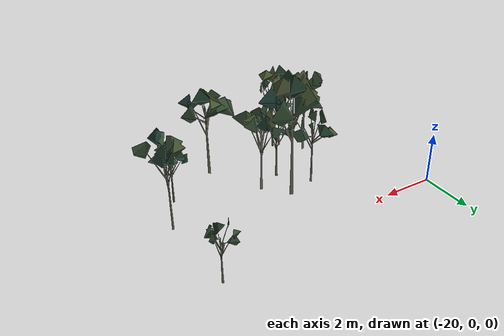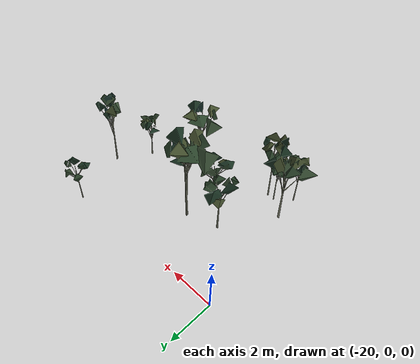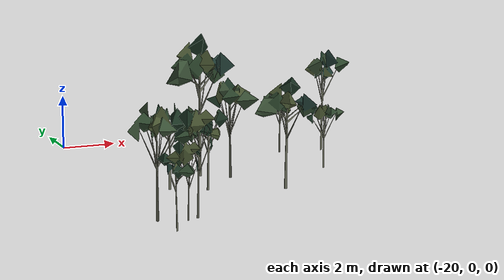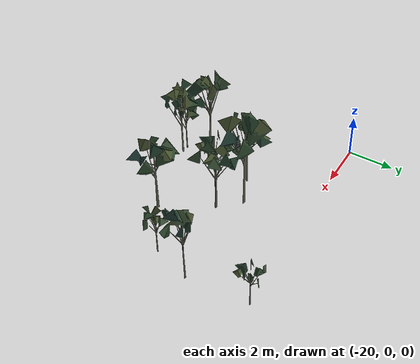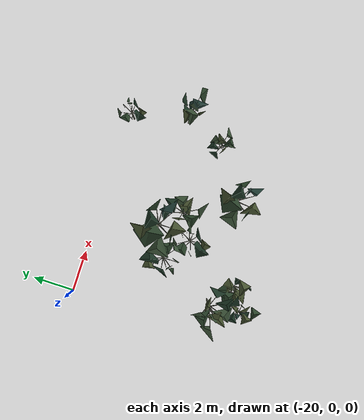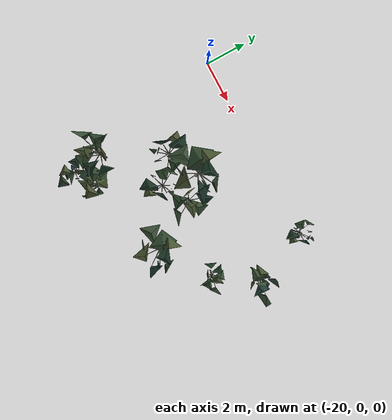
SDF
<sdf version="1.8">
 <model name="blue_mountains">
  <static>true</static>
  <link name="forest_18_19">
   <collision name="tree_33_trunk">
    <pose>-17.67387 -7.1513 -0.1148505 0 0 -0.3141277</pose>
    <geometry><cylinder><radius>0.03664446</radius><length>2.218725</length></cylinder></geometry>
   </collision>
   <collision name="plant_33_crown_0">
    <pose>-17.68781 -7.14677 -1.224213 0 0 -0.3141277</pose>
    <geometry>
     <mesh>
      <uri>model://blue_mountains/meshes/canopy_0_0.dae</uri>
      <scale>0.1465779 0.1465779 0.1636297</scale>
     </mesh>
    </geometry>
   </collision>
   <collision name="plant_33_crown_1">
    <pose>-17.68781 -7.14677 -1.224213 0 0 -0.3141277</pose>
    <geometry>
     <mesh>
      <uri>model://blue_mountains/meshes/canopy_0_1.dae</uri>
      <scale>0.1465779 0.1465779 0.1636297</scale>
     </mesh>
    </geometry>
   </collision>
   <collision name="tree_74_trunk">
    <pose>-18.5521 -6.403756 0.2904527 0 0 1.483283</pose>
    <geometry><cylinder><radius>0.06112766</radius><length>3.265831</length></cylinder></geometry>
   </collision>
   <collision name="plant_74_crown_0">
    <pose>-18.55424 -6.428114 -1.342463 0 0 1.483283</pose>
    <geometry>
     <mesh>
      <uri>model://blue_mountains/meshes/canopy_5_0.dae</uri>
      <scale>0.2445106 0.2445106 0.2454747</scale>
     </mesh>
    </geometry>
   </collision>
   <collision name="plant_74_crown_1">
    <pose>-18.55424 -6.428114 -1.342463 0 0 1.483283</pose>
    <geometry>
     <mesh>
      <uri>model://blue_mountains/meshes/canopy_5_1.dae</uri>
      <scale>0.2445106 0.2445106 0.2454747</scale>
     </mesh>
    </geometry>
   </collision>
   <collision name="tree_86_trunk">
    <pose>-14.75222 -3.83536 0.7106016 0 0 -2.903044</pose>
    <geometry><cylinder><radius>0.05477026</radius><length>2.962629</length></cylinder></geometry>
   </collision>
   <collision name="plant_86_crown_0">
    <pose>-14.73093 -3.830183 -0.7707131 0 0 -2.903044</pose>
    <geometry>
     <mesh><uri>model://blue_mountains/meshes/canopy_5_0.dae</uri><scale>0.219081 0.219081 0.2226847</scale></mesh>
    </geometry>
   </collision>
   <collision name="plant_86_crown_1">
    <pose>-14.73093 -3.830183 -0.7707131 0 0 -2.903044</pose>
    <geometry>
     <mesh><uri>model://blue_mountains/meshes/canopy_5_1.dae</uri><scale>0.219081 0.219081 0.2226847</scale></mesh>
    </geometry>
   </collision>
   <collision name="tree_96_trunk">
    <pose>-18.40975 -7.88112 -0.2095358 0 0 2.776021</pose>
    <geometry><cylinder><radius>0.04003729</radius><length>2.228242</length></cylinder></geometry>
   </collision>
   <collision name="plant_96_crown_0">
    <pose>-18.39479 -7.886845 -1.323657 0 0 2.776021</pose>
    <geometry>
     <mesh>
      <uri>model://blue_mountains/meshes/canopy_8_0.dae</uri>
      <scale>0.1601492 0.1601492 0.1658012</scale>
     </mesh>
    </geometry>
   </collision>
   <collision name="plant_96_crown_1">
    <pose>-18.39479 -7.886845 -1.323657 0 0 2.776021</pose>
    <geometry>
     <mesh>
      <uri>model://blue_mountains/meshes/canopy_8_1.dae</uri>
      <scale>0.1601492 0.1601492 0.1658012</scale>
     </mesh>
    </geometry>
   </collision>
   <collision name="tree_142_trunk">
    <pose>-11.25445 -4.555299 0.44985 0 0 -2.02446</pose>
    <geometry><cylinder><radius>0.03880433</radius><length>1.995399</length></cylinder></geometry>
   </collision>
   <collision name="plant_142_crown_0">
    <pose>-11.24765 -4.541348 -0.5478497 0 0 -2.02446</pose>
    <geometry>
     <mesh>
      <uri>model://blue_mountains/meshes/canopy_5_0.dae</uri>
      <scale>0.1552173 0.1552173 0.1499833</scale>
     </mesh>
    </geometry>
   </collision>
   <collision name="plant_142_crown_1">
    <pose>-11.24765 -4.541348 -0.5478497 0 0 -2.02446</pose>
    <geometry>
     <mesh>
      <uri>model://blue_mountains/meshes/canopy_5_1.dae</uri>
      <scale>0.1552173 0.1552173 0.1499833</scale>
     </mesh>
    </geometry>
   </collision>
   <collision name="tree_175_trunk">
    <pose>-17.05142 -3.61287 0.2040389 0 0 -1.808071</pose>
    <geometry><cylinder><radius>0.05201321</radius><length>2.507867</length></cylinder></geometry>
   </collision>
   <collision name="plant_175_crown_0">
    <pose>-17.04653 -3.592648 -1.049895 0 0 -1.808071</pose>
    <geometry>
     <mesh>
      <uri>model://blue_mountains/meshes/canopy_2_0.dae</uri>
      <scale>0.2080528 0.2080528 0.1845172</scale>
     </mesh>
    </geometry>
   </collision>
   <collision name="plant_175_crown_1">
    <pose>-17.04653 -3.592648 -1.049895 0 0 -1.808071</pose>
    <geometry>
     <mesh>
      <uri>model://blue_mountains/meshes/canopy_2_1.dae</uri>
      <scale>0.2080528 0.2080528 0.1845172</scale>
     </mesh>
    </geometry>
   </collision>
   <collision name="tree_188_trunk">
    <pose>-11.01804 -0.06597132 -0.01448396 0 0 0.873368</pose>
    <geometry><cylinder><radius>0.0362997</radius><length>1.899944</length></cylinder></geometry>
   </collision>
   <collision name="plant_188_crown_0">
    <pose>-11.02736 -0.07710075 -0.9644558 0 0 0.873368</pose>
    <geometry>
     <mesh>
      <uri>model://blue_mountains/meshes/canopy_2_0.dae</uri>
      <scale>0.1451988 0.1451988 0.1397891</scale>
     </mesh>
    </geometry>
   </collision>
   <collision name="plant_188_crown_1">
    <pose>-11.02736 -0.07710075 -0.9644558 0 0 0.873368</pose>
    <geometry>
     <mesh>
      <uri>model://blue_mountains/meshes/canopy_2_1.dae</uri>
      <scale>0.1451988 0.1451988 0.1397891</scale>
     </mesh>
    </geometry>
   </collision>
   <collision name="tree_190_trunk">
    <pose>-15.60124 -2.939341 1.258676 0 0 0.9505229</pose>
    <geometry><cylinder><radius>0.07091607</radius><length>4.168292</length></cylinder></geometry>
   </collision>
   <collision name="plant_190_crown_0">
    <pose>-15.61773 -2.962423 -0.8254697 0 0 0.9505229</pose>
    <geometry>
     <mesh>
      <uri>model://blue_mountains/meshes/canopy_3_0.dae</uri>
      <scale>0.2836643 0.2836643 0.3098932</scale>
     </mesh>
    </geometry>
   </collision>
   <collision name="plant_190_crown_1">
    <pose>-15.61773 -2.962423 -0.8254697 0 0 0.9505229</pose>
    <geometry>
     <mesh>
      <uri>model://blue_mountains/meshes/canopy_3_1.dae</uri>
      <scale>0.2836643 0.2836643 0.3098932</scale>
     </mesh>
    </geometry>
   </collision>
   <collision name="tree_208_trunk">
    <pose>-10.47232 -2.759015 1.208945 0 0 -1.325034</pose>
    <geometry><cylinder><radius>0.04814595</radius><length>3.068817</length></cylinder></geometry>
   </collision>
   <collision name="plant_208_crown_0">
    <pose>-10.477 -2.740335 -0.3254635 0 0 -1.325034</pose>
    <geometry>
     <mesh>
      <uri>model://blue_mountains/meshes/canopy_6_0.dae</uri>
      <scale>0.1925838 0.1925838 0.2262092</scale>
     </mesh>
    </geometry>
   </collision>
   <collision name="plant_208_crown_1">
    <pose>-10.477 -2.740335 -0.3254635 0 0 -1.325034</pose>
    <geometry>
     <mesh>
      <uri>model://blue_mountains/meshes/canopy_6_1.dae</uri>
      <scale>0.1925838 0.1925838 0.2262092</scale>
     </mesh>
    </geometry>
   </collision>
   <collision name="tree_305_trunk">
    <pose>-15.92184 -4.574165 0.2045954 0 0 0.7117371</pose>
    <geometry><cylinder><radius>0.04857388</radius><length>2.294421</length></cylinder></geometry>
   </collision>
   <collision name="plant_305_crown_0">
    <pose>-15.93655 -4.586855 -0.9426153 0 0 0.7117371</pose>
    <geometry>
     <mesh>
      <uri>model://blue_mountains/meshes/canopy_2_0.dae</uri>
      <scale>0.1942955 0.1942955 0.1688129</scale>
     </mesh>
    </geometry>
   </collision>
   <collision name="plant_305_crown_1">
    <pose>-15.93655 -4.586855 -0.9426153 0 0 0.7117371</pose>
    <geometry>
     <mesh>
      <uri>model://blue_mountains/meshes/canopy_2_1.dae</uri>
      <scale>0.1942955 0.1942955 0.1688129</scale>
     </mesh>
    </geometry>
   </collision>
   <collision name="tree_387_trunk">
    <pose>-13.46558 -5.995666 0.7992405 0 0 0.5176474</pose>
    <geometry><cylinder><radius>0.06355399</radius><length>3.154238</length></cylinder></geometry>
   </collision>
   <collision name="plant_387_crown_0">
    <pose>-13.48767 -6.008245 -0.7778783 0 0 0.5176474</pose>
    <geometry>
     <mesh><uri>model://blue_mountains/meshes/canopy_3_0.dae</uri><scale>0.254216 0.254216 0.2345029</scale></mesh>
    </geometry>
   </collision>
   <collision name="plant_387_crown_1">
    <pose>-13.48767 -6.008245 -0.7778783 0 0 0.5176474</pose>
    <geometry>
     <mesh><uri>model://blue_mountains/meshes/canopy_3_1.dae</uri><scale>0.254216 0.254216 0.2345029</scale></mesh>
    </geometry>
   </collision>
   <collision name="tree_398_trunk">
    <pose>-17.30995 -7.143062 0.3463947 0 0 -0.2038911</pose>
    <geometry><cylinder><radius>0.0470248</radius><length>3.043382</length></cylinder></geometry>
   </collision>
   <collision name="plant_398_crown_0">
    <pose>-17.32837 -7.139254 -1.175296 0 0 -0.2038911</pose>
    <geometry>
     <mesh>
      <uri>model://blue_mountains/meshes/canopy_0_0.dae</uri>
      <scale>0.1880992 0.1880992 0.2244477</scale>
     </mesh>
    </geometry>
   </collision>
   <collision name="plant_398_crown_1">
    <pose>-17.32837 -7.139254 -1.175296 0 0 -0.2038911</pose>
    <geometry>
     <mesh>
      <uri>model://blue_mountains/meshes/canopy_0_1.dae</uri>
      <scale>0.1880992 0.1880992 0.2244477</scale>
     </mesh>
    </geometry>
   </collision>
   <visual name="forest_visual">
    <geometry><mesh><uri>model://blue_mountains/meshes/forest_18_19.dae</uri></mesh></geometry>
    <cast_shadows>false</cast_shadows>
   </visual>
  </link>
 </model>
</sdf>
